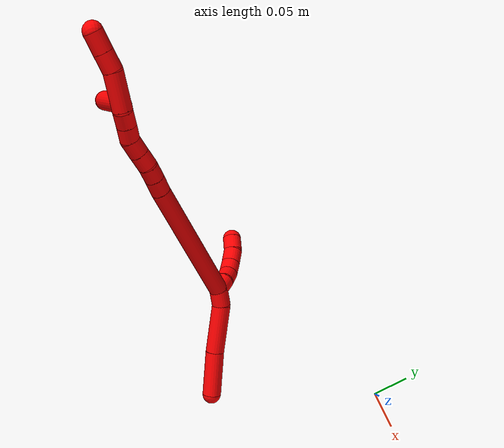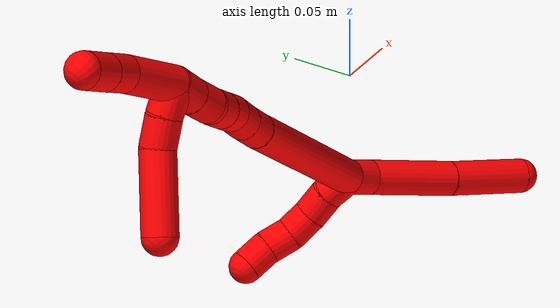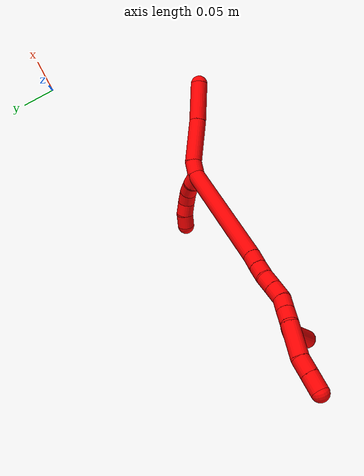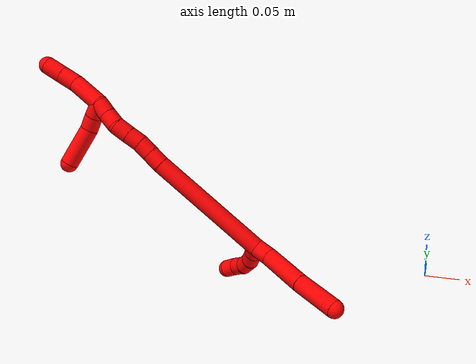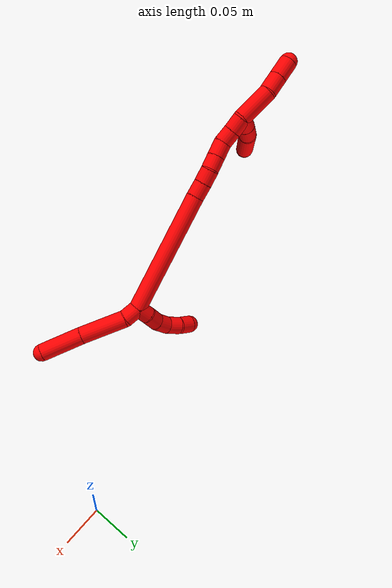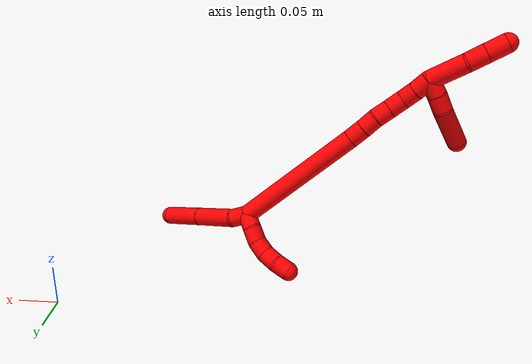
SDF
<sdf version="1.7">
 <world name="default">
  <model name="photoneo_s_sensor">
   <static>1</static>
   <pose>0 0 2 1.57079 1.57079 3.14159</pose>
   <link name="link">
    <inertial><mass>0.1</mass></inertial>
    <sensor name="sensor" type="depth">
     <update_rate>30</update_rate>
     <camera>
      <horizontal_fov>1.22</horizontal_fov>
      <image><width>1920</width><height>1200</height><format>B8G8R8</format></image>
      <clip><near>0.1</near><far>4</far></clip>
      <depth_camera><output>points</output></depth_camera>
     </camera>
     <plugin name="camera_plugin" filename="libgazebo_ros_depth_camera.so">
      <baseline>0.2</baseline>
      <alwaysOn>1</alwaysOn>
      <updateRate>0.0</updateRate>
      <cameraName>camera_ir</cameraName>
      <imageTopicName>/camera/color/image_raw</imageTopicName>
      <cameraInfoTopicName>/camera/color/camera_info</cameraInfoTopicName>
      <depthImageTopicName>/camera/depth/image_raw</depthImageTopicName>
      <depthImageCameraInfoTopicName>/camera/depth/camera_info</depthImageCameraInfoTopicName>
      <pointCloudTopicName>/camera/depth/points</pointCloudTopicName>
      <frameName>fr_optical</frameName>
      <pointCloudCutoff>0.1</pointCloudCutoff>
      <pointCloudCutoffMax>2.0</pointCloudCutoffMax>
      <distortionK1>0</distortionK1>
      <distortionK2>0</distortionK2>
      <distortionK3>0</distortionK3>
      <distortionT1>0</distortionT1>
      <distortionT2>0</distortionT2>
      <CxPrime>0</CxPrime>
      <Cx>0</Cx>
      <Cy>0</Cy>
      <focalLength>0</focalLength>
      <hackBaseline>0</hackBaseline>
     </plugin>
    </sensor>
   </link>
  </model>
  <model name="bin">
   <static>1</static>
   <link name="bottom">
    <collision name="collision-bottom">
     <pose>0 0 -0.01 0 -0 0</pose>
     <geometry><box><size>0.8 0.6 0.02</size></box></geometry>
     <surface>
      <friction><ode><mu>100</mu><mu2>100</mu2></ode></friction>
      <contact><collide_bitmask>65535</collide_bitmask></contact>
     </surface>
    </collision>
   </link>
   <link name="west_wall">
    <collision name="collision-west_wall">
     <pose>-0.41 0 0.1 0 -0 0</pose>
     <geometry><box><size>0.02 0.6 0.2</size></box></geometry>
     <surface>
      <friction><ode><mu>100</mu><mu2>100</mu2></ode></friction>
      <contact><collide_bitmask>65535</collide_bitmask></contact>
     </surface>
    </collision>
   </link>
   <link name="east_wall">
    <collision name="collision-east_wall">
     <pose>0.41 0 0.1 0 -0 0</pose>
     <geometry><box><size>0.02 0.6 0.2</size></box></geometry>
     <surface>
      <friction><ode><mu>100</mu><mu2>100</mu2></ode></friction>
      <contact><collide_bitmask>65535</collide_bitmask></contact>
     </surface>
    </collision>
   </link>
   <link name="south_wall">
    <collision name="collision-south_wall">
     <pose>0 -0.31 0.1 0 -0 0</pose>
     <geometry><box><size>0.8 0.02 0.2</size></box></geometry>
     <surface>
      <friction><ode><mu>100</mu><mu2>100</mu2></ode></friction>
      <contact><collide_bitmask>65535</collide_bitmask></contact>
     </surface>
    </collision>
   </link>
   <link name="north_wall">
    <collision name="collision-north_wall">
     <pose>0 0.31 0.1 0 -0 0</pose>
     <geometry><box><size>0.8 0.02 0.2</size></box></geometry>
     <surface>
      <friction><ode><mu>100</mu><mu2>100</mu2></ode></friction>
      <contact><collide_bitmask>65535</collide_bitmask></contact>
     </surface>
    </collision>
   </link>
  </model>
  <model name="2">
   <static>0</static>
   <link name="2">
    <collision name="collision-cylinder-e_1_2_8">
     <pose>0.005012 -0.005053 -0.008908 2.62558 0.4551 1.44049</pose>
     <geometry><cylinder><radius>0.0125</radius><length>0.022804</length></cylinder></geometry>
     <surface>
      <friction><ode><mu>1.16</mu><mu2>1.16</mu2><slip1>0</slip1><slip2>0</slip2></ode></friction>
      <contact><ode><kp>1e+06</kp><kd>1</kd><max_vel>0</max_vel><min_depth>0.001</min_depth></ode></contact>
     </surface>
    </collision>
    <visual name="visual-cylinder-e_1_2_8">
     <pose>0.005012 -0.005053 -0.008908 2.62558 0.4551 1.44049</pose>
     <geometry><cylinder><radius>0.0125</radius><length>0.022804</length></cylinder></geometry>
     <material><ambient>1 0 0 1</ambient></material>
    </visual>
    <collision name="collision-cylinder-e_2_8_9">
     <pose>0.030383 -0.015754 -0.043342 2.92384 0.661647 2.52532</pose>
     <geometry><cylinder><radius>0.0125</radius><length>0.066271</length></cylinder></geometry>
     <surface>
      <friction><ode><mu>1.16</mu><mu2>1.16</mu2><slip1>0</slip1><slip2>0</slip2></ode></friction>
      <contact><ode><kp>1e+06</kp><kd>1</kd><max_vel>0</max_vel><min_depth>0.001</min_depth></ode></contact>
     </surface>
    </collision>
    <visual name="visual-cylinder-e_2_8_9">
     <pose>0.030383 -0.015754 -0.043342 2.92384 0.661647 2.52532</pose>
     <geometry><cylinder><radius>0.0125</radius><length>0.066271</length></cylinder></geometry>
     <material><ambient>1 0 0 1</ambient></material>
    </visual>
    <collision name="collision-cylinder-e_3_9_6">
     <pose>0.067869 -0.027204 -0.093383 2.90923 0.597089 2.41663</pose>
     <geometry><cylinder><radius>0.0125</radius><length>0.060925</length></cylinder></geometry>
     <surface>
      <friction><ode><mu>1.16</mu><mu2>1.16</mu2><slip1>0</slip1><slip2>0</slip2></ode></friction>
      <contact><ode><kp>1e+06</kp><kd>1</kd><max_vel>0</max_vel><min_depth>0.001</min_depth></ode></contact>
     </surface>
    </collision>
    <visual name="visual-cylinder-e_3_9_6">
     <pose>0.067869 -0.027204 -0.093383 2.90923 0.597089 2.41663</pose>
     <geometry><cylinder><radius>0.0125</radius><length>0.060925</length></cylinder></geometry>
     <material><ambient>1 0 0 1</ambient></material>
    </visual>
    <collision name="collision-cylinder-e_1_2_10">
     <pose>-0.001775 -0.00749 0.006383 0.865005 -0.178467 -0.082562</pose>
     <geometry><cylinder><radius>0.0125</radius><length>0.02</length></cylinder></geometry>
     <surface>
      <friction><ode><mu>1.16</mu><mu2>1.16</mu2><slip1>0</slip1><slip2>0</slip2></ode></friction>
      <contact><ode><kp>1e+06</kp><kd>1</kd><max_vel>0</max_vel><min_depth>0.001</min_depth></ode></contact>
     </surface>
    </collision>
    <visual name="visual-cylinder-e_1_2_10">
     <pose>-0.001775 -0.00749 0.006383 0.865005 -0.178467 -0.082562</pose>
     <geometry><cylinder><radius>0.0125</radius><length>0.02</length></cylinder></geometry>
     <material><ambient>1 0 0 1</ambient></material>
    </visual>
    <collision name="collision-cylinder-e_2_10_11">
     <pose>-0.003491 -0.022674 0.019154 0.877933 0.005982 0.002809</pose>
     <geometry><cylinder><radius>0.0125</radius><length>0.02</length></cylinder></geometry>
     <surface>
      <friction><ode><mu>1.16</mu><mu2>1.16</mu2><slip1>0</slip1><slip2>0</slip2></ode></friction>
      <contact><ode><kp>1e+06</kp><kd>1</kd><max_vel>0</max_vel><min_depth>0.001</min_depth></ode></contact>
     </surface>
    </collision>
    <visual name="visual-cylinder-e_2_10_11">
     <pose>-0.003491 -0.022674 0.019154 0.877933 0.005982 0.002809</pose>
     <geometry><cylinder><radius>0.0125</radius><length>0.02</length></cylinder></geometry>
     <material><ambient>1 0 0 1</ambient></material>
    </visual>
    <collision name="collision-cylinder-e_3_11_12">
     <pose>-0.004211 -0.03621 0.03362 0.626059 -0.078119 -0.025296</pose>
     <geometry><cylinder><radius>0.0125</radius><length>0.02</length></cylinder></geometry>
     <surface>
      <friction><ode><mu>1.16</mu><mu2>1.16</mu2><slip1>0</slip1><slip2>0</slip2></ode></friction>
      <contact><ode><kp>1e+06</kp><kd>1</kd><max_vel>0</max_vel><min_depth>0.001</min_depth></ode></contact>
     </surface>
    </collision>
    <visual name="visual-cylinder-e_3_11_12">
     <pose>-0.004211 -0.03621 0.03362 0.626059 -0.078119 -0.025296</pose>
     <geometry><cylinder><radius>0.0125</radius><length>0.02</length></cylinder></geometry>
     <material><ambient>1 0 0 1</ambient></material>
    </visual>
    <collision name="collision-cylinder-e_4_12_13">
     <pose>-0.007868 -0.045593 0.050597 0.378754 -0.291757 -0.056307</pose>
     <geometry><cylinder><radius>0.0125</radius><length>0.02</length></cylinder></geometry>
     <surface>
      <friction><ode><mu>1.16</mu><mu2>1.16</mu2><slip1>0</slip1><slip2>0</slip2></ode></friction>
      <contact><ode><kp>1e+06</kp><kd>1</kd><max_vel>0</max_vel><min_depth>0.001</min_depth></ode></contact>
     </surface>
    </collision>
    <visual name="visual-cylinder-e_4_12_13">
     <pose>-0.007868 -0.045593 0.050597 0.378754 -0.291757 -0.056307</pose>
     <geometry><cylinder><radius>0.0125</radius><length>0.02</length></cylinder></geometry>
     <material><ambient>1 0 0 1</ambient></material>
    </visual>
    <collision name="collision-cylinder-e_5_13_5">
     <pose>-0.011537 -0.05175 0.069115 0.265453 -0.079343 -0.010599</pose>
     <geometry><cylinder><radius>0.0125</radius><length>0.02</length></cylinder></geometry>
     <surface>
      <friction><ode><mu>1.16</mu><mu2>1.16</mu2><slip1>0</slip1><slip2>0</slip2></ode></friction>
      <contact><ode><kp>1e+06</kp><kd>1</kd><max_vel>0</max_vel><min_depth>0.001</min_depth></ode></contact>
     </surface>
    </collision>
    <visual name="visual-cylinder-e_5_13_5">
     <pose>-0.011537 -0.05175 0.069115 0.265453 -0.079343 -0.010599</pose>
     <geometry><cylinder><radius>0.0125</radius><length>0.02</length></cylinder></geometry>
     <material><ambient>1 0 0 1</ambient></material>
    </visual>
    <collision name="collision-cylinder-e_1_2_14">
     <pose>-0.025166 0.067201 0.050433 -0.926988 -0.291012 0.146224</pose>
     <geometry><cylinder><radius>0.0125</radius><length>0.175418</length></cylinder></geometry>
     <surface>
      <friction><ode><mu>1.16</mu><mu2>1.16</mu2><slip1>0</slip1><slip2>0</slip2></ode></friction>
      <contact><ode><kp>1e+06</kp><kd>1</kd><max_vel>0</max_vel><min_depth>0.001</min_depth></ode></contact>
     </surface>
    </collision>
    <visual name="visual-cylinder-e_1_2_14">
     <pose>-0.025166 0.067201 0.050433 -0.926988 -0.291012 0.146224</pose>
     <geometry><cylinder><radius>0.0125</radius><length>0.175418</length></cylinder></geometry>
     <material><ambient>1 0 0 1</ambient></material>
    </visual>
    <collision name="collision-cylinder-e_2_14_15">
     <pose>-0.054323 0.142538 0.106721 -0.946962 -0.379062 0.195944</pose>
     <geometry><cylinder><radius>0.0125</radius><length>0.021576</length></cylinder></geometry>
     <surface>
      <friction><ode><mu>1.16</mu><mu2>1.16</mu2><slip1>0</slip1><slip2>0</slip2></ode></friction>
      <contact><ode><kp>1e+06</kp><kd>1</kd><max_vel>0</max_vel><min_depth>0.001</min_depth></ode></contact>
     </surface>
    </collision>
    <visual name="visual-cylinder-e_2_14_15">
     <pose>-0.054323 0.142538 0.106721 -0.946962 -0.379062 0.195944</pose>
     <geometry><cylinder><radius>0.0125</radius><length>0.021576</length></cylinder></geometry>
     <material><ambient>1 0 0 1</ambient></material>
    </visual>
    <collision name="collision-cylinder-e_3_15_16">
     <pose>-0.061906 0.158658 0.117788 -0.992558 -0.360076 0.196474</pose>
     <geometry><cylinder><radius>0.0125</radius><length>0.020381</length></cylinder></geometry>
     <surface>
      <friction><ode><mu>1.16</mu><mu2>1.16</mu2><slip1>0</slip1><slip2>0</slip2></ode></friction>
      <contact><ode><kp>1e+06</kp><kd>1</kd><max_vel>0</max_vel><min_depth>0.001</min_depth></ode></contact>
     </surface>
    </collision>
    <visual name="visual-cylinder-e_3_15_16">
     <pose>-0.061906 0.158658 0.117788 -0.992558 -0.360076 0.196474</pose>
     <geometry><cylinder><radius>0.0125</radius><length>0.020381</length></cylinder></geometry>
     <material><ambient>1 0 0 1</ambient></material>
    </visual>
    <collision name="collision-cylinder-e_4_16_17">
     <pose>-0.067419 0.174339 0.129179 -0.894173 -0.192375 0.092457</pose>
     <geometry><cylinder><radius>0.0125</radius><length>0.020107</length></cylinder></geometry>
     <surface>
      <friction><ode><mu>1.16</mu><mu2>1.16</mu2><slip1>0</slip1><slip2>0</slip2></ode></friction>
      <contact><ode><kp>1e+06</kp><kd>1</kd><max_vel>0</max_vel><min_depth>0.001</min_depth></ode></contact>
     </surface>
    </collision>
    <visual name="visual-cylinder-e_4_16_17">
     <pose>-0.067419 0.174339 0.129179 -0.894173 -0.192375 0.092457</pose>
     <geometry><cylinder><radius>0.0125</radius><length>0.020107</length></cylinder></geometry>
     <material><ambient>1 0 0 1</ambient></material>
    </visual>
    <collision name="collision-cylinder-e_5_17_18">
     <pose>-0.07165 0.190279 0.141843 -0.904414 -0.216681 0.105575</pose>
     <geometry><cylinder><radius>0.0125</radius><length>0.021483</length></cylinder></geometry>
     <surface>
      <friction><ode><mu>1.16</mu><mu2>1.16</mu2><slip1>0</slip1><slip2>0</slip2></ode></friction>
      <contact><ode><kp>1e+06</kp><kd>1</kd><max_vel>0</max_vel><min_depth>0.001</min_depth></ode></contact>
     </surface>
    </collision>
    <visual name="visual-cylinder-e_5_17_18">
     <pose>-0.07165 0.190279 0.141843 -0.904414 -0.216681 0.105575</pose>
     <geometry><cylinder><radius>0.0125</radius><length>0.021483</length></cylinder></geometry>
     <material><ambient>1 0 0 1</ambient></material>
    </visual>
    <collision name="collision-cylinder-e_6_18_19">
     <pose>-0.079293 0.204986 0.153918 -0.857538 -0.558061 0.260459</pose>
     <geometry><cylinder><radius>0.0125</radius><length>0.020143</length></cylinder></geometry>
     <surface>
      <friction><ode><mu>1.16</mu><mu2>1.16</mu2><slip1>0</slip1><slip2>0</slip2></ode></friction>
      <contact><ode><kp>1e+06</kp><kd>1</kd><max_vel>0</max_vel><min_depth>0.001</min_depth></ode></contact>
     </surface>
    </collision>
    <visual name="visual-cylinder-e_6_18_19">
     <pose>-0.079293 0.204986 0.153918 -0.857538 -0.558061 0.260459</pose>
     <geometry><cylinder><radius>0.0125</radius><length>0.020143</length></cylinder></geometry>
     <material><ambient>1 0 0 1</ambient></material>
    </visual>
    <collision name="collision-cylinder-e_7_19_1">
     <pose>-0.090203 0.218569 0.164732 -0.937951 -0.563158 0.291056</pose>
     <geometry><cylinder><radius>0.0125</radius><length>0.020892</length></cylinder></geometry>
     <surface>
      <friction><ode><mu>1.16</mu><mu2>1.16</mu2><slip1>0</slip1><slip2>0</slip2></ode></friction>
      <contact><ode><kp>1e+06</kp><kd>1</kd><max_vel>0</max_vel><min_depth>0.001</min_depth></ode></contact>
     </surface>
    </collision>
    <visual name="visual-cylinder-e_7_19_1">
     <pose>-0.090203 0.218569 0.164732 -0.937951 -0.563158 0.291056</pose>
     <geometry><cylinder><radius>0.0125</radius><length>0.020892</length></cylinder></geometry>
     <material><ambient>1 0 0 1</ambient></material>
    </visual>
    <collision name="collision-cylinder-e_1_1_20">
     <pose>-0.091709 0.219256 0.17756 0.702318 0.38788 0.143658</pose>
     <geometry><cylinder><radius>0.0125</radius><length>0.021522</length></cylinder></geometry>
     <surface>
      <friction><ode><mu>1.16</mu><mu2>1.16</mu2><slip1>0</slip1><slip2>0</slip2></ode></friction>
      <contact><ode><kp>1e+06</kp><kd>1</kd><max_vel>0</max_vel><min_depth>0.001</min_depth></ode></contact>
     </surface>
    </collision>
    <visual name="visual-cylinder-e_1_1_20">
     <pose>-0.091709 0.219256 0.17756 0.702318 0.38788 0.143658</pose>
     <geometry><cylinder><radius>0.0125</radius><length>0.021522</length></cylinder></geometry>
     <material><ambient>1 0 0 1</ambient></material>
    </visual>
    <collision name="collision-cylinder-e_2_20_21">
     <pose>-0.082566 0.206158 0.191817 0.786223 0.494184 0.208453</pose>
     <geometry><cylinder><radius>0.0125</radius><length>0.021391</length></cylinder></geometry>
     <surface>
      <friction><ode><mu>1.16</mu><mu2>1.16</mu2><slip1>0</slip1><slip2>0</slip2></ode></friction>
      <contact><ode><kp>1e+06</kp><kd>1</kd><max_vel>0</max_vel><min_depth>0.001</min_depth></ode></contact>
     </surface>
    </collision>
    <visual name="visual-cylinder-e_2_20_21">
     <pose>-0.082566 0.206158 0.191817 0.786223 0.494184 0.208453</pose>
     <geometry><cylinder><radius>0.0125</radius><length>0.021391</length></cylinder></geometry>
     <material><ambient>1 0 0 1</ambient></material>
    </visual>
    <collision name="collision-cylinder-e_3_21_4">
     <pose>-0.057962 0.187598 0.215549 0.608408 0.753613 0.247202</pose>
     <geometry><cylinder><radius>0.0125</radius><length>0.057087</length></cylinder></geometry>
     <surface>
      <friction><ode><mu>1.16</mu><mu2>1.16</mu2><slip1>0</slip1><slip2>0</slip2></ode></friction>
      <contact><ode><kp>1e+06</kp><kd>1</kd><max_vel>0</max_vel><min_depth>0.001</min_depth></ode></contact>
     </surface>
    </collision>
    <visual name="visual-cylinder-e_3_21_4">
     <pose>-0.057962 0.187598 0.215549 0.608408 0.753613 0.247202</pose>
     <geometry><cylinder><radius>0.0125</radius><length>0.057087</length></cylinder></geometry>
     <material><ambient>1 0 0 1</ambient></material>
    </visual>
    <collision name="collision-cylinder-e_1_1_22">
     <pose>-0.107047 0.239059 0.187201 -0.659398 -0.476688 0.165896</pose>
     <geometry><cylinder><radius>0.0125</radius><length>0.049113</length></cylinder></geometry>
     <surface>
      <friction><ode><mu>1.16</mu><mu2>1.16</mu2><slip1>0</slip1><slip2>0</slip2></ode></friction>
      <contact><ode><kp>1e+06</kp><kd>1</kd><max_vel>0</max_vel><min_depth>0.001</min_depth></ode></contact>
     </surface>
    </collision>
    <visual name="visual-cylinder-e_1_1_22">
     <pose>-0.107047 0.239059 0.187201 -0.659398 -0.476688 0.165896</pose>
     <geometry><cylinder><radius>0.0125</radius><length>0.049113</length></cylinder></geometry>
     <material><ambient>1 0 0 1</ambient></material>
    </visual>
    <collision name="collision-cylinder-e_2_22_23">
     <pose>-0.121337 0.260389 0.213234 -0.736188 -0.249525 0.096662</pose>
     <geometry><cylinder><radius>0.0125</radius><length>0.024477</length></cylinder></geometry>
     <surface>
      <friction><ode><mu>1.16</mu><mu2>1.16</mu2><slip1>0</slip1><slip2>0</slip2></ode></friction>
      <contact><ode><kp>1e+06</kp><kd>1</kd><max_vel>0</max_vel><min_depth>0.001</min_depth></ode></contact>
     </surface>
    </collision>
    <visual name="visual-cylinder-e_2_22_23">
     <pose>-0.121337 0.260389 0.213234 -0.736188 -0.249525 0.096662</pose>
     <geometry><cylinder><radius>0.0125</radius><length>0.024477</length></cylinder></geometry>
     <material><ambient>1 0 0 1</ambient></material>
    </visual>
    <collision name="collision-cylinder-e_3_23_3">
     <pose>-0.127715 0.276927 0.231486 -0.73613 -0.256993 0.099573</pose>
     <geometry><cylinder><radius>0.0125</radius><length>0.02641</length></cylinder></geometry>
     <surface>
      <friction><ode><mu>1.16</mu><mu2>1.16</mu2><slip1>0</slip1><slip2>0</slip2></ode></friction>
      <contact><ode><kp>1e+06</kp><kd>1</kd><max_vel>0</max_vel><min_depth>0.001</min_depth></ode></contact>
     </surface>
    </collision>
    <visual name="visual-cylinder-e_3_23_3">
     <pose>-0.127715 0.276927 0.231486 -0.73613 -0.256993 0.099573</pose>
     <geometry><cylinder><radius>0.0125</radius><length>0.02641</length></cylinder></geometry>
     <material><ambient>1 0 0 1</ambient></material>
    </visual>
    <collision name="collision-sphere-3">
     <pose>-0.131072 0.285502 0.240951 0 -0 0</pose>
     <geometry><sphere><radius>0.0125</radius></sphere></geometry>
     <surface>
      <friction><ode><mu>1.16</mu><mu2>1.16</mu2><slip1>0</slip1><slip2>0</slip2></ode></friction>
      <contact><ode><kp>1e+06</kp><kd>1</kd><max_vel>0</max_vel><min_depth>0.001</min_depth></ode></contact>
     </surface>
    </collision>
    <visual name="visual-sphere-3">
     <pose>-0.131072 0.285502 0.240951 0 -0 0</pose>
     <geometry><sphere><radius>0.0125</radius></sphere></geometry>
     <material><ambient>1 0 0 1</ambient></material>
    </visual>
    <collision name="collision-sphere-23">
     <pose>-0.124359 0.268352 0.222022 0 -0 0</pose>
     <geometry><sphere><radius>0.0125</radius></sphere></geometry>
     <surface>
      <friction><ode><mu>1.16</mu><mu2>1.16</mu2><slip1>0</slip1><slip2>0</slip2></ode></friction>
      <contact><ode><kp>1e+06</kp><kd>1</kd><max_vel>0</max_vel><min_depth>0.001</min_depth></ode></contact>
     </surface>
    </collision>
    <visual name="visual-sphere-23">
     <pose>-0.124359 0.268352 0.222022 0 -0 0</pose>
     <geometry><sphere><radius>0.0125</radius></sphere></geometry>
     <material><ambient>1 0 0 1</ambient></material>
    </visual>
    <collision name="collision-sphere-22">
     <pose>-0.118314 0.252426 0.204446 0 -0 0</pose>
     <geometry><sphere><radius>0.0125</radius></sphere></geometry>
     <surface>
      <friction><ode><mu>1.16</mu><mu2>1.16</mu2><slip1>0</slip1><slip2>0</slip2></ode></friction>
      <contact><ode><kp>1e+06</kp><kd>1</kd><max_vel>0</max_vel><min_depth>0.001</min_depth></ode></contact>
     </surface>
    </collision>
    <visual name="visual-sphere-22">
     <pose>-0.118314 0.252426 0.204446 0 -0 0</pose>
     <geometry><sphere><radius>0.0125</radius></sphere></geometry>
     <material><ambient>1 0 0 1</ambient></material>
    </visual>
    <collision name="collision-sphere-4">
     <pose>-0.03843 0.175701 0.232628 0 -0 0</pose>
     <geometry><sphere><radius>0.0125</radius></sphere></geometry>
     <surface>
      <friction><ode><mu>1.16</mu><mu2>1.16</mu2><slip1>0</slip1><slip2>0</slip2></ode></friction>
      <contact><ode><kp>1e+06</kp><kd>1</kd><max_vel>0</max_vel><min_depth>0.001</min_depth></ode></contact>
     </surface>
    </collision>
    <visual name="visual-sphere-4">
     <pose>-0.03843 0.175701 0.232628 0 -0 0</pose>
     <geometry><sphere><radius>0.0125</radius></sphere></geometry>
     <material><ambient>1 0 0 1</ambient></material>
    </visual>
    <collision name="collision-sphere-21">
     <pose>-0.077493 0.199495 0.198469 0 -0 0</pose>
     <geometry><sphere><radius>0.0125</radius></sphere></geometry>
     <surface>
      <friction><ode><mu>1.16</mu><mu2>1.16</mu2><slip1>0</slip1><slip2>0</slip2></ode></friction>
      <contact><ode><kp>1e+06</kp><kd>1</kd><max_vel>0</max_vel><min_depth>0.001</min_depth></ode></contact>
     </surface>
    </collision>
    <visual name="visual-sphere-21">
     <pose>-0.077493 0.199495 0.198469 0 -0 0</pose>
     <geometry><sphere><radius>0.0125</radius></sphere></geometry>
     <material><ambient>1 0 0 1</ambient></material>
    </visual>
    <collision name="collision-sphere-20">
     <pose>-0.087639 0.212821 0.185164 0 -0 0</pose>
     <geometry><sphere><radius>0.0125</radius></sphere></geometry>
     <surface>
      <friction><ode><mu>1.16</mu><mu2>1.16</mu2><slip1>0</slip1><slip2>0</slip2></ode></friction>
      <contact><ode><kp>1e+06</kp><kd>1</kd><max_vel>0</max_vel><min_depth>0.001</min_depth></ode></contact>
     </surface>
    </collision>
    <visual name="visual-sphere-20">
     <pose>-0.087639 0.212821 0.185164 0 -0 0</pose>
     <geometry><sphere><radius>0.0125</radius></sphere></geometry>
     <material><ambient>1 0 0 1</ambient></material>
    </visual>
    <collision name="collision-sphere-11">
     <pose>-0.003431 -0.030368 0.025541 0 -0 0</pose>
     <geometry><sphere><radius>0.0125</radius></sphere></geometry>
     <surface>
      <friction><ode><mu>1.16</mu><mu2>1.16</mu2><slip1>0</slip1><slip2>0</slip2></ode></friction>
      <contact><ode><kp>1e+06</kp><kd>1</kd><max_vel>0</max_vel><min_depth>0.001</min_depth></ode></contact>
     </surface>
    </collision>
    <visual name="visual-sphere-11">
     <pose>-0.003431 -0.030368 0.025541 0 -0 0</pose>
     <geometry><sphere><radius>0.0125</radius></sphere></geometry>
     <material><ambient>1 0 0 1</ambient></material>
    </visual>
    <collision name="collision-sphere-10">
     <pose>-0.00355 -0.01498 0.012767 0 -0 0</pose>
     <geometry><sphere><radius>0.0125</radius></sphere></geometry>
     <surface>
      <friction><ode><mu>1.16</mu><mu2>1.16</mu2><slip1>0</slip1><slip2>0</slip2></ode></friction>
      <contact><ode><kp>1e+06</kp><kd>1</kd><max_vel>0</max_vel><min_depth>0.001</min_depth></ode></contact>
     </surface>
    </collision>
    <visual name="visual-sphere-10">
     <pose>-0.00355 -0.01498 0.012767 0 -0 0</pose>
     <geometry><sphere><radius>0.0125</radius></sphere></geometry>
     <material><ambient>1 0 0 1</ambient></material>
    </visual>
    <collision name="collision-sphere-6">
     <pose>0.084996 -0.033005 -0.117897 0 -0 0</pose>
     <geometry><sphere><radius>0.0125</radius></sphere></geometry>
     <surface>
      <friction><ode><mu>1.16</mu><mu2>1.16</mu2><slip1>0</slip1><slip2>0</slip2></ode></friction>
      <contact><ode><kp>1e+06</kp><kd>1</kd><max_vel>0</max_vel><min_depth>0.001</min_depth></ode></contact>
     </surface>
    </collision>
    <visual name="visual-sphere-6">
     <pose>0.084996 -0.033005 -0.117897 0 -0 0</pose>
     <geometry><sphere><radius>0.0125</radius></sphere></geometry>
     <material><ambient>1 0 0 1</ambient></material>
    </visual>
    <collision name="collision-sphere-9">
     <pose>0.050742 -0.021402 -0.068868 0 -0 0</pose>
     <geometry><sphere><radius>0.0125</radius></sphere></geometry>
     <surface>
      <friction><ode><mu>1.16</mu><mu2>1.16</mu2><slip1>0</slip1><slip2>0</slip2></ode></friction>
      <contact><ode><kp>1e+06</kp><kd>1</kd><max_vel>0</max_vel><min_depth>0.001</min_depth></ode></contact>
     </surface>
    </collision>
    <visual name="visual-sphere-9">
     <pose>0.050742 -0.021402 -0.068868 0 -0 0</pose>
     <geometry><sphere><radius>0.0125</radius></sphere></geometry>
     <material><ambient>1 0 0 1</ambient></material>
    </visual>
    <collision name="collision-sphere-2">
     <geometry><sphere><radius>0.0125</radius></sphere></geometry>
     <surface>
      <friction><ode><mu>1.16</mu><mu2>1.16</mu2><slip1>0</slip1><slip2>0</slip2></ode></friction>
      <contact><ode><kp>1e+06</kp><kd>1</kd><max_vel>0</max_vel><min_depth>0.001</min_depth></ode></contact>
     </surface>
    </collision>
    <visual name="visual-sphere-2">
     <geometry><sphere><radius>0.0125</radius></sphere></geometry>
     <material><ambient>1 0 0 1</ambient></material>
    </visual>
    <collision name="collision-sphere-19">
     <pose>-0.084626 0.211447 0.159508 0 -0 0</pose>
     <geometry><sphere><radius>0.0125</radius></sphere></geometry>
     <surface>
      <friction><ode><mu>1.16</mu><mu2>1.16</mu2><slip1>0</slip1><slip2>0</slip2></ode></friction>
      <contact><ode><kp>1e+06</kp><kd>1</kd><max_vel>0</max_vel><min_depth>0.001</min_depth></ode></contact>
     </surface>
    </collision>
    <visual name="visual-sphere-19">
     <pose>-0.084626 0.211447 0.159508 0 -0 0</pose>
     <geometry><sphere><radius>0.0125</radius></sphere></geometry>
     <material><ambient>1 0 0 1</ambient></material>
    </visual>
    <collision name="collision-sphere-8">
     <pose>0.010024 -0.010107 -0.017816 0 -0 0</pose>
     <geometry><sphere><radius>0.0125</radius></sphere></geometry>
     <surface>
      <friction><ode><mu>1.16</mu><mu2>1.16</mu2><slip1>0</slip1><slip2>0</slip2></ode></friction>
      <contact><ode><kp>1e+06</kp><kd>1</kd><max_vel>0</max_vel><min_depth>0.001</min_depth></ode></contact>
     </surface>
    </collision>
    <visual name="visual-sphere-8">
     <pose>0.010024 -0.010107 -0.017816 0 -0 0</pose>
     <geometry><sphere><radius>0.0125</radius></sphere></geometry>
     <material><ambient>1 0 0 1</ambient></material>
    </visual>
    <collision name="collision-sphere-12">
     <pose>-0.004992 -0.042052 0.041699 0 -0 0</pose>
     <geometry><sphere><radius>0.0125</radius></sphere></geometry>
     <surface>
      <friction><ode><mu>1.16</mu><mu2>1.16</mu2><slip1>0</slip1><slip2>0</slip2></ode></friction>
      <contact><ode><kp>1e+06</kp><kd>1</kd><max_vel>0</max_vel><min_depth>0.001</min_depth></ode></contact>
     </surface>
    </collision>
    <visual name="visual-sphere-12">
     <pose>-0.004992 -0.042052 0.041699 0 -0 0</pose>
     <geometry><sphere><radius>0.0125</radius></sphere></geometry>
     <material><ambient>1 0 0 1</ambient></material>
    </visual>
    <collision name="collision-sphere-13">
     <pose>-0.010744 -0.049134 0.059496 0 -0 0</pose>
     <geometry><sphere><radius>0.0125</radius></sphere></geometry>
     <surface>
      <friction><ode><mu>1.16</mu><mu2>1.16</mu2><slip1>0</slip1><slip2>0</slip2></ode></friction>
      <contact><ode><kp>1e+06</kp><kd>1</kd><max_vel>0</max_vel><min_depth>0.001</min_depth></ode></contact>
     </surface>
    </collision>
    <visual name="visual-sphere-13">
     <pose>-0.010744 -0.049134 0.059496 0 -0 0</pose>
     <geometry><sphere><radius>0.0125</radius></sphere></geometry>
     <material><ambient>1 0 0 1</ambient></material>
    </visual>
    <collision name="collision-sphere-5">
     <pose>-0.012329 -0.054365 0.078735 0 -0 0</pose>
     <geometry><sphere><radius>0.0125</radius></sphere></geometry>
     <surface>
      <friction><ode><mu>1.16</mu><mu2>1.16</mu2><slip1>0</slip1><slip2>0</slip2></ode></friction>
      <contact><ode><kp>1e+06</kp><kd>1</kd><max_vel>0</max_vel><min_depth>0.001</min_depth></ode></contact>
     </surface>
    </collision>
    <visual name="visual-sphere-5">
     <pose>-0.012329 -0.054365 0.078735 0 -0 0</pose>
     <geometry><sphere><radius>0.0125</radius></sphere></geometry>
     <material><ambient>1 0 0 1</ambient></material>
    </visual>
    <collision name="collision-sphere-14">
     <pose>-0.050331 0.134403 0.100867 0 -0 0</pose>
     <geometry><sphere><radius>0.0125</radius></sphere></geometry>
     <surface>
      <friction><ode><mu>1.16</mu><mu2>1.16</mu2><slip1>0</slip1><slip2>0</slip2></ode></friction>
      <contact><ode><kp>1e+06</kp><kd>1</kd><max_vel>0</max_vel><min_depth>0.001</min_depth></ode></contact>
     </surface>
    </collision>
    <visual name="visual-sphere-14">
     <pose>-0.050331 0.134403 0.100867 0 -0 0</pose>
     <geometry><sphere><radius>0.0125</radius></sphere></geometry>
     <material><ambient>1 0 0 1</ambient></material>
    </visual>
    <collision name="collision-sphere-15">
     <pose>-0.058316 0.150672 0.112576 0 -0 0</pose>
     <geometry><sphere><radius>0.0125</radius></sphere></geometry>
     <surface>
      <friction><ode><mu>1.16</mu><mu2>1.16</mu2><slip1>0</slip1><slip2>0</slip2></ode></friction>
      <contact><ode><kp>1e+06</kp><kd>1</kd><max_vel>0</max_vel><min_depth>0.001</min_depth></ode></contact>
     </surface>
    </collision>
    <visual name="visual-sphere-15">
     <pose>-0.058316 0.150672 0.112576 0 -0 0</pose>
     <geometry><sphere><radius>0.0125</radius></sphere></geometry>
     <material><ambient>1 0 0 1</ambient></material>
    </visual>
    <collision name="collision-sphere-16">
     <pose>-0.065497 0.166645 0.123001 0 -0 0</pose>
     <geometry><sphere><radius>0.0125</radius></sphere></geometry>
     <surface>
      <friction><ode><mu>1.16</mu><mu2>1.16</mu2><slip1>0</slip1><slip2>0</slip2></ode></friction>
      <contact><ode><kp>1e+06</kp><kd>1</kd><max_vel>0</max_vel><min_depth>0.001</min_depth></ode></contact>
     </surface>
    </collision>
    <visual name="visual-sphere-16">
     <pose>-0.065497 0.166645 0.123001 0 -0 0</pose>
     <geometry><sphere><radius>0.0125</radius></sphere></geometry>
     <material><ambient>1 0 0 1</ambient></material>
    </visual>
    <collision name="collision-sphere-17">
     <pose>-0.069341 0.182033 0.135358 0 -0 0</pose>
     <geometry><sphere><radius>0.0125</radius></sphere></geometry>
     <surface>
      <friction><ode><mu>1.16</mu><mu2>1.16</mu2><slip1>0</slip1><slip2>0</slip2></ode></friction>
      <contact><ode><kp>1e+06</kp><kd>1</kd><max_vel>0</max_vel><min_depth>0.001</min_depth></ode></contact>
     </surface>
    </collision>
    <visual name="visual-sphere-17">
     <pose>-0.069341 0.182033 0.135358 0 -0 0</pose>
     <geometry><sphere><radius>0.0125</radius></sphere></geometry>
     <material><ambient>1 0 0 1</ambient></material>
    </visual>
    <collision name="collision-sphere-18">
     <pose>-0.073959 0.198525 0.148328 0 -0 0</pose>
     <geometry><sphere><radius>0.0125</radius></sphere></geometry>
     <surface>
      <friction><ode><mu>1.16</mu><mu2>1.16</mu2><slip1>0</slip1><slip2>0</slip2></ode></friction>
      <contact><ode><kp>1e+06</kp><kd>1</kd><max_vel>0</max_vel><min_depth>0.001</min_depth></ode></contact>
     </surface>
    </collision>
    <visual name="visual-sphere-18">
     <pose>-0.073959 0.198525 0.148328 0 -0 0</pose>
     <geometry><sphere><radius>0.0125</radius></sphere></geometry>
     <material><ambient>1 0 0 1</ambient></material>
    </visual>
    <collision name="collision-sphere-1">
     <pose>-0.095779 0.225691 0.169956 0 -0 0</pose>
     <geometry><sphere><radius>0.0125</radius></sphere></geometry>
     <surface>
      <friction><ode><mu>1.16</mu><mu2>1.16</mu2><slip1>0</slip1><slip2>0</slip2></ode></friction>
      <contact><ode><kp>1e+06</kp><kd>1</kd><max_vel>0</max_vel><min_depth>0.001</min_depth></ode></contact>
     </surface>
    </collision>
    <visual name="visual-sphere-1">
     <pose>-0.095779 0.225691 0.169956 0 -0 0</pose>
     <geometry><sphere><radius>0.0125</radius></sphere></geometry>
     <material><ambient>1 0 0 1</ambient></material>
    </visual>
    <inertial>
     <pose>-0.034919 0.098081 0.081741 0 -0 0</pose>
     <mass>0.75</mass>
     <inertia>
      <ixx>0.000545</ixx>
      <ixy>0</ixy>
      <ixz>0</ixz>
      <iyy>0.000479</iyy>
      <iyz>0</iyz>
      <izz>-0.000224</izz>
     </inertia>
    </inertial>
   </link>
   <pose>-0.225951 -0.132175 0.069577 1.86486 0.535472 -1.55696</pose>
  </model>
 </world>
</sdf>
